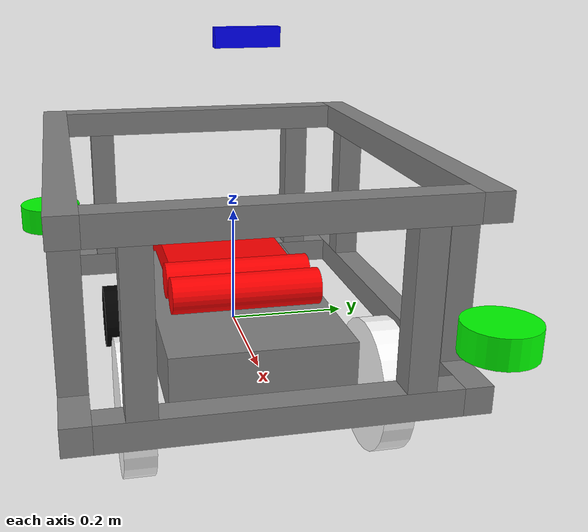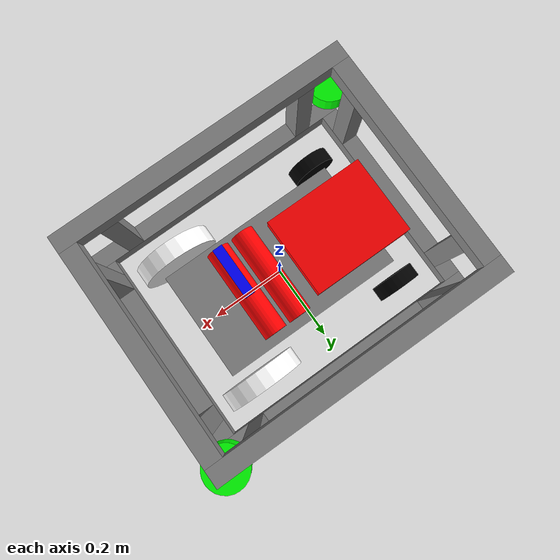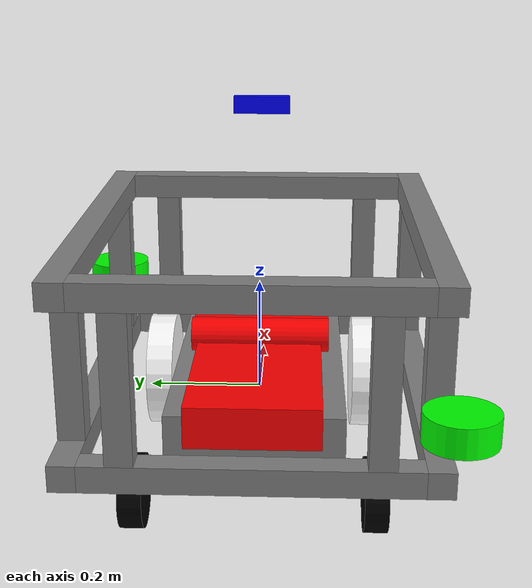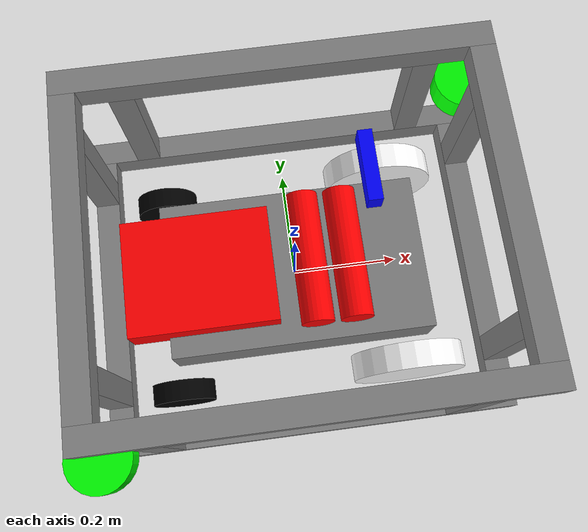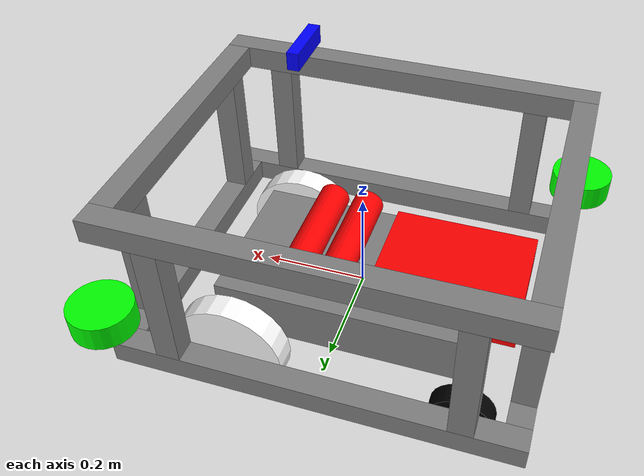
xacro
<?xml version="1.0"?>
<robot name="mensabot_base" xmlns:xacro="http://www.ros.org/wiki/xacro">

  <xacro:arg name="model_only" default="False" />

  <xacro:include filename="$(find mensabot_description)/urdf/mensabot/mensabot_macro.xacro" />
  <xacro:mensabot_frame/>

  <xacro:include filename="$(find mensabot_description)/urdf/mensabot/mensabot_macro.ros2_control.xacro" />
  <xacro:mensabot_ros2_control/>

</robot>

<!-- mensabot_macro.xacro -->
<robot xmlns:xacro="http://www.ros.org/wiki/xacro" name="mensabot">

  <!-- ===================== MATERIALIEN ===================== -->
  <material name="grey"><color rgba="0.5 0.5 0.5 1"/></material>
  <material name="black"><color rgba="0 0 0 1"/></material>
  <material name="blue"><color rgba="0 0 1 1"/></material>
  <material name="green"><color rgba="0 1 0 1"/></material>
  <material name="red"><color rgba="1 0 0 1"/></material>
  <material name="white"><color rgba="1 1 1 1"/></material>

  <!-- ===================== GLOBALE PARAMETER ===================== -->
  <xacro:property name="rod_weight_per_meter" value="1.549"/>

  <!-- ===================== ROBOT-MAKRO ===================== -->
  <xacro:macro name="mensabot_frame">

    <!-- Roboterbasis -->
    <link name="base_link">
      <visual>
        <origin xyz="0 0 0" rpy="0 0 0"/>
        <geometry><box size="0.5 0.3 0.1"/></geometry> <!-- Beispiel-Chassis -->
        <material name="grey"/>
      </visual>
    </link>

    <!-- Grundstruktur -->
    <xacro:mensabot_rod prefix="mid_front_bottom" parent="base_link" position="0.355 0 0" rotation="0 0 ${pi/2}" length="0.538" color="grey"/>
    <xacro:mensabot_rod prefix="mid_back_bottom" parent="base_link" position="-0.355 0 0" rotation="0 0 ${pi/2}" length="0.538" color="grey"/>
    <xacro:mensabot_rod prefix="side_left_bottom" parent="base_link" position="0 0.2915 0" rotation="0 0 0" length="0.755" color="grey"/>
    <xacro:mensabot_rod prefix="side_right_bottom" parent="base_link" position="0 -0.2915 0" rotation="0 0 0" length="0.755" color="grey"/>

    <xacro:mensabot_rod prefix="mid_front_top" parent="base_link" position="0.355 0 0.295" rotation="0 0 ${pi/2}" length="0.538" color="grey"/>
    <xacro:mensabot_rod prefix="mid_back_top" parent="base_link" position="-0.355 0 0.295" rotation="0 0 ${pi/2}" length="0.538" color="grey"/>
    <xacro:mensabot_rod prefix="side_left_top" parent="base_link" position="0 0.2915 0.295" rotation="0 0 0" length="0.755" color="grey"/>
    <xacro:mensabot_rod prefix="side_right_top" parent="base_link" position="0 -0.2915 0.295" rotation="0 0 0" length="0.755" color="grey"/>

    <!-- Senkrecht -->
    <xacro:mensabot_rod prefix="front_right1" parent="base_link" position="0.355 0.2015 0.1475" rotation="0 ${pi/2} 0" length="0.25" color="grey"/>
    <xacro:mensabot_rod prefix="front_left1" parent="base_link" position="0.355 -0.2015 0.1475" rotation="0 ${pi/2} 0" length="0.25" color="grey"/>
    <xacro:mensabot_rod prefix="front_right2" parent="base_link" position="0.265 0.2915 0.1475" rotation="0 ${pi/2} 0" length="0.25" color="grey"/>
    <xacro:mensabot_rod prefix="front_left2" parent="base_link" position="0.265 -0.2915 0.1475" rotation="0 ${pi/2} 0" length="0.25" color="grey"/>
    <xacro:mensabot_rod prefix="back_left1" parent="base_link" position="-0.355 -0.2015 0.1475" rotation="0 ${pi/2} 0" length="0.25" color="grey"/>
    <xacro:mensabot_rod prefix="back_right1" parent="base_link" position="-0.355 0.2015 0.1475" rotation="0 ${pi/2} 0" length="0.25" color="grey"/>
    <xacro:mensabot_rod prefix="back_left2" parent="base_link" position="-0.265 -0.2915 0.1475" rotation="0 ${pi/2} 0" length="0.25" color="grey"/>
    <xacro:mensabot_rod prefix="back_right2" parent="base_link" position="-0.265 0.2915 0.1475" rotation="0 ${pi/2} 0" length="0.25" color="grey"/>

    <!-- Box-Komponenten -->
    <xacro:mensabot_box postfix="battery" parent="base_link" position="-0.180 0 0.0625" rotation="0 0 0" length="0.280" width="0.22" height="0.07" weight="17.5" color="red"/>

    <!-- Angetriebene Räder -->
    <xacro:mensabot_wheel prefix="left" parent="base_link" position="0.200 0.20 -0.05" rotation="${pi} 0 0" radius="0.110" width="0.050" weight="2" color="white"/>
    <xacro:mensabot_wheel prefix="right" parent="base_link" position="0.200 -0.20 -0.05" rotation="0 0 0" radius="0.110" width="0.050" weight="2" color="white"/>

    <!-- Motoren -->
    <xacro:mensabot_motor prefix="left" parent="base_link" position="0.0275 0.0 0.09" rotation="0 0 0" radius="0.031" width="0.25" weight="5" color="red"/>
    <xacro:mensabot_motor prefix="right" parent="base_link" position="0.1 0.0 0.09" rotation="0 0 0" radius="0.031" width="0.25" weight="5" color="red"/>

    <!-- Castor-Wheels -->
    <xacro:mensabot_castor_wheel prefix="castor_left" parent="base_link" position="-0.250 0.2 -0.085" rotation="0 0 0" radius="0.0625" width="0.040" weight="2" color="black"/>
    <xacro:mensabot_castor_wheel prefix="castor_right" parent="base_link" position="-0.250 -0.2 -0.085" rotation="0 0 0" radius="0.0625" width="0.040" weight="2" color="black"/>

    <!-- Sensoren -->
    <xacro:mensabot_camera prefix="front_camera" parent="base_link" position="0.10 0.00 0.5" rotation="-1.5708 0 -1.5708" color="blue"/>
    <xacro:mensabot_lidar prefix="lidar_front" parent="base_link" position="0.3775 0.314 0.1" rotation="0 0 0" radius="0.06" width="0.05" color="green"/>
    <xacro:mensabot_lidar prefix="lidar_back" parent="base_link" position="-0.3775 -0.314 0.1" rotation="0 0 0" radius="0.06" width="0.05" color="green"/>

  </xacro:macro>

  <!-- ===================== MAKROS ===================== -->

  <!-- Kamera -->
  <xacro:macro name="mensabot_camera" params="prefix parent position rotation color=blue">
    <link name="${prefix}_link">
      <visual>
        <geometry><box size="0.10 0.03 0.02"/></geometry>
        <material name="${color}"/>
      </visual>
      <collision>
        <geometry><box size="0.10 0.03 0.02"/></geometry>
      </collision>
      <inertial>
        <mass value="0.1"/>
        <inertia ixx="1e-4" iyy="1e-4" izz="1e-4" ixy="0" ixz="0" iyz="0"/>
      </inertial>
    </link>
    <joint name="${prefix}_joint" type="fixed">
      <parent link="${parent}"/>
      <child link="${prefix}_link"/>
      <origin xyz="${position}" rpy="${rotation}"/>
    </joint>
  </xacro:macro>

  <!-- Lidar -->
  <xacro:macro name="mensabot_lidar" params="prefix parent position rotation radius width color=green">
    <link name="${prefix}_link">
      <visual>
        <geometry><cylinder radius="${radius}" length="${width}"/></geometry>
        <material name="${color}"/>
      </visual>
      <collision>
        <geometry><cylinder radius="${radius}" length="${width}"/></geometry>
      </collision>
      <inertial>
        <mass value="0.05"/>
        <inertia ixx="1e-5" iyy="1e-5" izz="1e-5" ixy="0" ixz="0" iyz="0"/>
      </inertial>
    </link>
    <joint name="${prefix}_joint" type="fixed">
      <parent link="${parent}"/>
      <child link="${prefix}_link"/>
      <origin xyz="${position}" rpy="${rotation}"/>
    </joint>
  </xacro:macro>

  <!-- Wheel -->
  <xacro:macro name="mensabot_wheel" params="prefix parent position rotation radius width weight color=black">
    <link name="${prefix}_wheel">
      <visual>
        <origin xyz="0 0 0" rpy="${pi/2} 0 0"/>
        <geometry><cylinder radius="${radius}" length="${width}"/></geometry>
        <material name="${color}"/>
      </visual>
      <collision>
        <origin xyz="0 0 0" rpy="${pi/2} 0 0"/>
        <geometry><cylinder radius="${radius}" length="${width}"/></geometry>
      </collision>
      <inertial>
        <origin xyz="0 0 0"/>
        <mass value="${weight}"/>
        <inertia ixx="${weight * radius * radius / 2}" iyy="${weight * (3*radius*radius + width*width)/12}" izz="${weight * (3*radius*radius + width*width)/12}" ixy="0" ixz="0" iyz="0"/>
      </inertial>
    </link>
    <joint name="${prefix}_wheel_joint" type="continuous">
      <axis xyz="0 1 0"/>
      <parent link="${parent}"/>
      <child link="${prefix}_wheel"/>
      <origin xyz="${position}" rpy="${rotation}"/>
    </joint>
  </xacro:macro>

  <!-- Rod -->
  <xacro:macro name="mensabot_rod" params="prefix parent position rotation length color=grey">
    <link name="${prefix}_mensabot_rod">
      <visual>
        <geometry><box size="${length} 0.045 0.045"/></geometry>
        <material name="${color}"/>
      </visual>
      <collision>
        <geometry><box size="${length} 0.045 0.045"/></geometry>
      </collision>
      <inertial>
        <mass value="${rod_weight_per_meter * length}"/>
        <inertia ixx="${rod_weight_per_meter * length * (0.04*0.04 + 0.04*0.04)/12}"
                 iyy="${rod_weight_per_meter * length * (0.04*0.04 + length*length)/12}"
                 izz="${rod_weight_per_meter * length * (0.04*0.04 + length*length)/12}" ixy="0" ixz="0" iyz="0"/>
      </inertial>
    </link>
    <joint name="${prefix}_mensabot_rod_joint" type="fixed">
      <parent link="${parent}"/>
      <child link="${prefix}_mensabot_rod"/>
      <origin xyz="${position}" rpy="${rotation}"/>
    </joint>
  </xacro:macro>

  <!-- Box -->
  <xacro:macro name="mensabot_box" params="postfix parent position rotation length width height weight color=grey">
    <link name="mensabot_${postfix}">
      <visual>
        <geometry><box size="${length} ${width} ${height}"/></geometry>
        <material name="${color}"/>
      </visual>
      <collision>
        <geometry><box size="${length} ${width} ${height}"/></geometry>
      </collision>
      <inertial>
        <mass value="${weight}"/>
        <inertia ixx="${weight * (height*height + width*width)/12}"
                 iyy="${weight * (height*height + length*length)/12}"
                 izz="${weight * (width*width + length*length)/12}" ixy="0" ixz="0" iyz="0"/>
      </inertial>
    </link>
    <joint name="mensabot_${postfix}_joint" type="fixed">
      <parent link="${parent}"/>
      <child link="mensabot_${postfix}"/>
      <origin xyz="${position}" rpy="${rotation}"/>
    </joint>
  </xacro:macro>

  <!-- Motor -->
  <xacro:macro name="mensabot_motor" params="prefix parent position rotation radius width weight color=black">
    <link name="${prefix}_motor">
      <visual>
        <origin xyz="0 0 0" rpy="${pi/2} 0 0"/>
        <geometry><cylinder radius="${radius}" length="${width}"/></geometry>
        <material name="${color}"/>
      </visual>
      <collision>
        <origin xyz="0 0 0" rpy="${pi/2} 0 0"/>
        <geometry><cylinder radius="${radius}" length="${width}"/></geometry>
      </collision>
      <inertial>
        <mass value="${weight}"/>
        <inertia ixx="${weight * radius * radius / 2}" iyy="${weight * (3*radius*radius + width*width)/12}" izz="${weight * (3*radius*radius + width*width)/12}" ixy="0" ixz="0" iyz="0"/>
      </inertial>
    </link>
    <joint name="${prefix}_motor_joint" type="fixed">
      <parent link="${parent}"/>
      <child link="${prefix}_motor"/>
      <origin xyz="${position}" rpy="${rotation}"/>
    </joint>
  </xacro:macro>

    <!-- Castor wheel (fixed version for RViz simulation) -->
  <xacro:macro name="mensabot_castor_wheel" params="prefix parent position rotation radius width weight color=black">
    <link name="${prefix}_castor_wheel">
      <visual>
        <origin xyz="0 0 0" rpy="${pi/2} 0 0"/>
        <geometry>
          <cylinder radius="${radius}" length="${width}"/>
        </geometry>
        <material name="${color}"/>
      </visual>
      <collision>
        <origin xyz="0 0 0" rpy="${pi/2} 0 0"/>
        <geometry>
          <cylinder radius="${radius}" length="${width}"/>
        </geometry>
      </collision>
      <inertial>
        <origin xyz="0 0 0"/>
        <mass value="${weight}"/>
        <inertia
          ixx="${weight * radius * radius / 2}"
          iyy="${weight * (3*radius*radius + width*width)/12}"
          izz="${weight * (3*radius*radius + width*width)/12}"
          ixy="0" ixz="0" iyz="0"/>
      </inertial>
    </link>

    <!-- FIXED joint instead of rotating one -->
    <joint name="${prefix}_castor_wheel_joint" type="fixed">
      <parent link="${parent}"/>
      <child link="${prefix}_castor_wheel"/>
      <origin xyz="${position}" rpy="${rotation}"/>
    </joint>
  </xacro:macro>

</robot>
